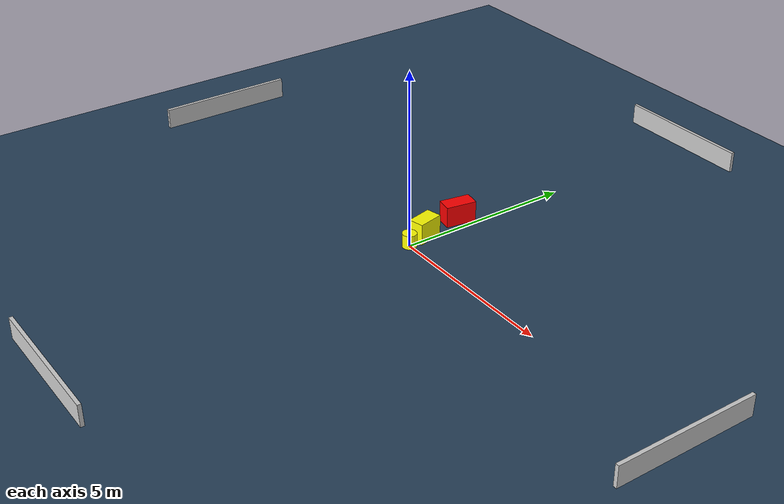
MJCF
<?xml version="1.0" ?>
<mujoco model="generated_environment">
  <option timestep="0.01" integrator="RK4" cone="elliptic"/>
  <default>
    <geom density="1"/>
  </default>
  <asset>
    <texture builtin="gradient" height="3072" name="skybox" rgb1="0.3 0.5 0.7" rgb2="0 0 0" type="skybox" width="512"/>
    <texture builtin="checker" height="300" name="groundplane" rgb1="0.2 0.3 0.4" rgb2="0.1 0.2 0.3" type="2d" width="300"/>
    <material name="groundplane" reflectance="0.2" texrepeat="5 5" texture="groundplane"/>
  </asset>
  <worldbody>
    <light dir="0 0 -1" directional="true" pos="0 0 1.5"/>
    <geom condim="3" friction="0.5 0.005 0.001" material="groundplane" name="floor" pos="0 0 0" size="0 0 0.05" type="plane"/>
    <body name="walls">
      <geom name="wall_1" condim="4" pos="-10.0 0.0 0.3" rgba="0.800000011920929 0.800000011920929 0.800000011920929 1.0" size="0.05 2.0 0.3" type="box"/>
      <geom name="wall_2" condim="4" pos="10.0 0.0 0.3" rgba="0.800000011920929 0.800000011920929 0.800000011920929 1.0" size="0.05 2.0 0.3" type="box"/>
      <geom name="wall_3" condim="4" pos="0.0 -10.0 0.3" rgba="0.800000011920929 0.800000011920929 0.800000011920929 1.0" size="2.0 0.05 0.3" type="box"/>
      <geom name="wall_4" condim="4" pos="0.0 10.0 0.3" rgba="0.800000011920929 0.800000011920929 0.800000011920929 1.0" size="2.0 0.05 0.3" type="box"/>
    </body>
    <body name="robot">
      <joint name="joint_x" type="slide" pos="0 0 0" axis="1 0 0"/>
      <joint name="joint_y" type="slide" pos="0 0 0" axis="0 1 0"/>
      <geom name="robot" type="cylinder" pos="0.0 0.0 0.2" size="0.2 0.2 0.0" mass="5.0" friction="1.0 0.005 0.0001" condim="4" rgba="1.0 1.0 0.0 1.0"/>
    </body>
    <body name="obstacle_1_movable">
      <geom name="obstacle_1_movable" condim="4" pos="-0.13945521514930084 0.5976245702889025 0.3" euler="0 0 102.93939005118435" friction="0.0 0.005 0.001" rgba="1.0 1.0 0.0 1.0" size="0.3644284971400932 0.21842308955157183 0.3" type="box" mass="0.1"/>
      <joint type="free"/>
    </body>
    <body name="obstacle_2_static">
      <geom name="obstacle_2_static" condim="4" pos="-0.32958433798560743 1.8327209686042638 0.3" euler="0 0 170.10648283852035" friction="0.0 0.005 0.001" rgba="1.0 0.0 0.0 1.0" size="0.22356422818854724 0.4306748782105231 0.3" type="box"/>
    </body>
  </worldbody>
  <actuator>
    <motor name="actuator_x" joint="joint_x" gear="1" ctrlrange="-1 1"/>
    <motor name="actuator_y" joint="joint_y" gear="1" ctrlrange="-1 1"/>
  </actuator>
</mujoco>
